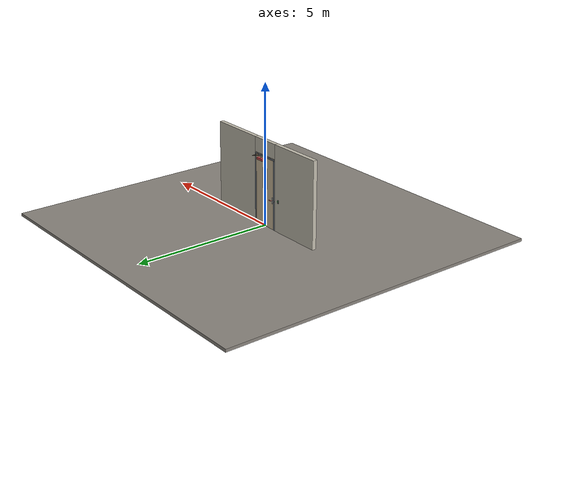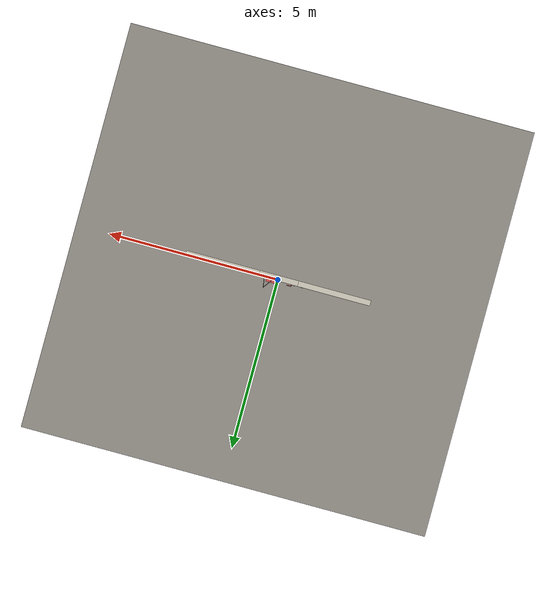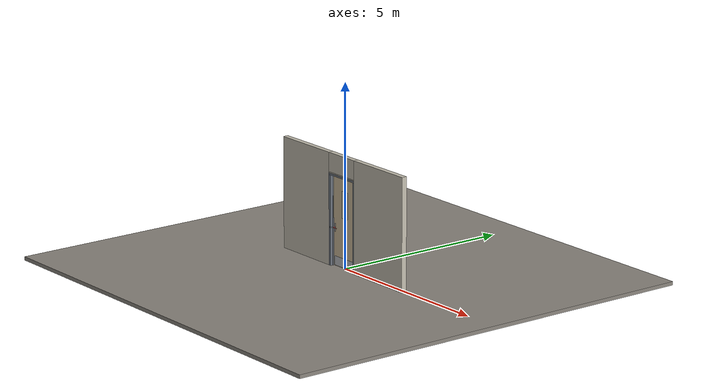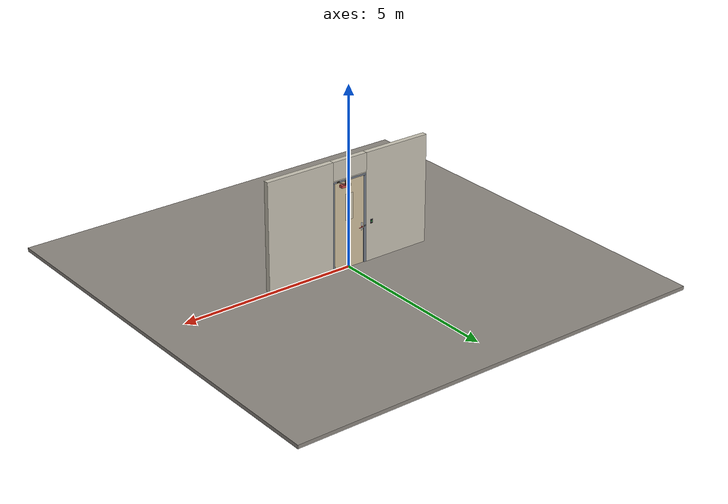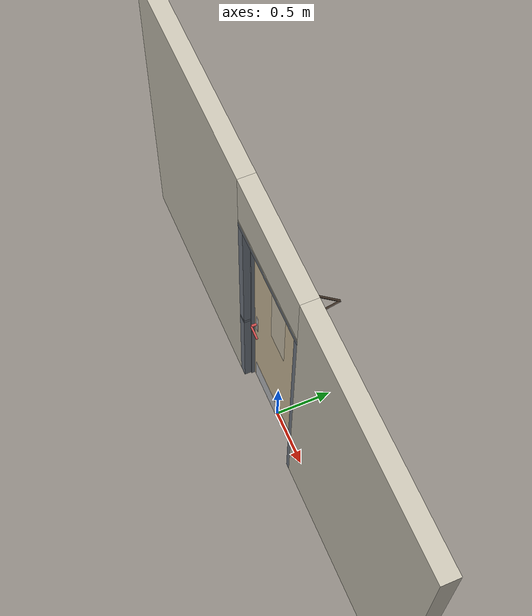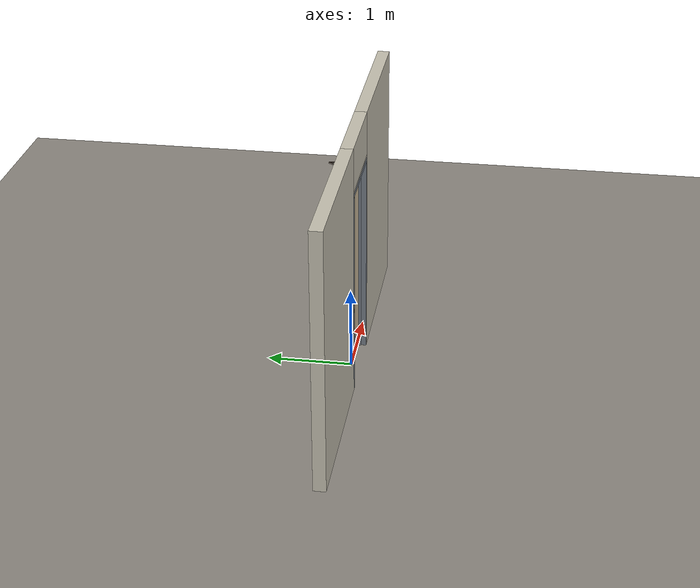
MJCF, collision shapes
<?xml version="1.0" ?>
<mujoco model="db0872_swing_single_full">
  <compiler angle="radian" meshdir="../../hardware" texturedir="../../textures" autolimits="true" inertiafromgeom="false"/>
  <option timestep="0.002" integrator="implicitfast" cone="elliptic" impratio="10" noslip_iterations="3">
    <flag multiccd="enable"/>
  </option>
  <size memory="16M"/>
  <default>
    <geom condim="4" solref="0.005 1" solimp="0.95 0.99 0.001"/>
    <joint solreflimit="0.005 1" solimplimit="0.95 0.99 0.001"/>
    <tendon solreflimit="0.005 1"/>
    <equality solref="0.002 1"/>
  </default>
  <visual>
    <headlight ambient="0.4 0.4 0.4" diffuse="0.7 0.7 0.7" specular="0.2 0.2 0.2"/>
    <quality shadowsize="4096"/>
    <map znear="0.01" zfar="60"/>
  </visual>
  <asset>
    <mesh name="closer_body_fdc4667657" file="closer_body_fdc4667657.obj"/>
    <mesh name="hinge_e22b26c0c1" file="hinge_e22b26c0c1.obj"/>
    <mesh name="hinge_jamb_e1d088f8dc" file="hinge_jamb_e1d088f8dc.obj"/>
    <mesh name="lever_f913fc5b7b" file="lever_f913fc5b7b.obj"/>
    <material name="mat_floor" rgba="0.55 0.53 0.5 1" specular="0.2" shininess="0.15" reflectance="0"/>
    <material name="mat_wall" rgba="0.78 0.76 0.7 1" specular="0.2" shininess="0.1" reflectance="0"/>
    <material name="mat_leaf" rgba="0.82 0.75 0.62 1" specular="0.2" shininess="0.32" reflectance="0"/>
    <material name="mat_glass" rgba="0.85 0.92 0.95 0.25" specular="0.2" shininess="0.95" reflectance="0.1"/>
    <material name="mat_hinge" rgba="0.65 0.66 0.68 1" specular="0.74" shininess="0.5" reflectance="0.36"/>
    <material name="mat_op_stainless" rgba="0.75 0.76 0.77 1" specular="0.8" shininess="0.65" reflectance="0.4"/>
    <material name="mat_trim" rgba="0.85 0.66 0.3 1" specular="0.8" shininess="0.75" reflectance="0.4"/>
    <material name="mat_bolt" rgba="0.75 0.76 0.77 1" specular="0.8" shininess="0.65" reflectance="0.4"/>
    <material name="mat_frame" rgba="0.45 0.48 0.52 1" specular="0.32" shininess="0.6" reflectance="0.08"/>
    <material name="mat_closer" rgba="0.22 0.17 0.13 1" specular="0.8" shininess="0.6" reflectance="0.4"/>
    <material name="mat_kick" rgba="0.75 0.76 0.77 1" specular="0.8" shininess="0.65" reflectance="0.4"/>
    <material name="mat_wallreader" rgba="0.05 0.05 0.05 1" specular="0.38" shininess="0.3" reflectance="0.12"/>
    <material name="mat_rex" rgba="0.1 0.6 0.2 1" specular="0.2" shininess="0.6" reflectance="0"/>
    <texture name="skybox" type="skybox" builtin="gradient" rgb1="0.6 0.7 0.85" rgb2="0.9 0.92 0.95" width="256" height="256"/>
  </asset>
  <worldbody>
    <light name="sun" pos="1.5 -2.5 4" dir="-0.3 0.5 -0.8" directional="true" diffuse="0.8 0.8 0.8" specular="0.3 0.3 0.3" castshadow="true"/>
    <light name="fill" pos="-1.5 2.5 3" dir="0.3 -0.5 -0.7" directional="true" diffuse="0.35 0.35 0.4" castshadow="false"/>
    <camera name="robot_view" pos="0 -2.966312 2.043887" xyaxes="1 0 0 0 0.26963 0.962964" fovy="52"/>
    <camera name="far_view" pos="0 2.879313 2.043887" xyaxes="-1 0 0 0 -0.26963 0.962964" fovy="52"/>
    <camera name="iso" pos="-2.221337 -2.498663 2.511538" xyaxes="0.741536 -0.670913 0 0.242917 0.268487 0.932151" fovy="46"/>
    <camera name="detail_handle" pos="-0.1175 -0.877 1.32" xyaxes="0.97561 0.219512 0 -0.070934 0.315262 0.94635" fovy="38"/>
    <geom name="floor" type="box" size="6 6 0.05" pos="0 0 -0.05" material="mat_floor" group="0" contype="1" conaffinity="1" friction="0.8 0.005 0.0001" density="2400"/>
    <geom name="wall_left" type="box" size="0.97975 0.0725 1.5255" pos="-1.52025 -0.0435 1.5255" material="mat_wall" group="0" contype="1" conaffinity="1" friction="0.6 0.005 0.0001" density="800"/>
    <geom name="wall_right" type="box" size="0.99475 0.0725 1.5255" pos="1.50525 -0.0435 1.5255" material="mat_wall" group="0" contype="1" conaffinity="1" friction="0.6 0.005 0.0001" density="800"/>
    <geom name="wall_header" type="box" size="0.5255 0.0725 0.26" pos="-0.015 -0.0435 2.791" material="mat_wall" group="0" contype="1" conaffinity="1" friction="0.6 0.005 0.0001" density="800"/>
    <geom name="hinge_0_jamb" type="mesh" mesh="hinge_jamb_e1d088f8dc" pos="0.4575 0.029 0.259" quat="0 0 0 1" material="mat_hinge" group="1" contype="0" conaffinity="0" density="7850"/>
    <geom name="hinge_1_jamb" type="mesh" mesh="hinge_jamb_e1d088f8dc" pos="0.4575 0.029 0.928333" quat="0 0 0 1" material="mat_hinge" group="1" contype="0" conaffinity="0" density="7850"/>
    <geom name="hinge_2_jamb" type="mesh" mesh="hinge_jamb_e1d088f8dc" pos="0.4575 0.029 1.597667" quat="0 0 0 1" material="mat_hinge" group="1" contype="0" conaffinity="0" density="7850"/>
    <geom name="hinge_3_jamb" type="mesh" mesh="hinge_jamb_e1d088f8dc" pos="0.4575 0.029 2.267" quat="0 0 0 1" material="mat_hinge" group="1" contype="0" conaffinity="0" density="7850"/>
    <geom name="jamb_hinge" type="box" size="0.025 0.0725 1.2255" pos="0.4855 -0.0435 1.2255" material="mat_frame" group="0" contype="1" conaffinity="1" friction="0.6 0.005 0.0001" density="300"/>
    <geom name="strike_1040_wall_n" type="box" size="0.04 0.05475 0.015" pos="-0.5005 -0.06125 1.04" material="mat_frame" group="0" contype="1" conaffinity="1" friction="0.6 0.005 0.0001" density="300"/>
    <geom name="strike_1040_wall_p" type="box" size="0.04 0.008 0.015" pos="-0.5005 0.0145 1.04" material="mat_frame" group="0" contype="1" conaffinity="1" friction="0.6 0.005 0.0001" density="300"/>
    <geom name="strike_1040_ramp" type="box" size="0.04 0.016771 0.015" pos="-0.503777 0.019611 1.04" quat="0.973249 0 0 0.229753" material="mat_frame" group="0" contype="1" conaffinity="1" friction="0.12 0.005 0.0001" density="300"/>
    <geom name="strike_1040_back" type="box" size="0.031 0.0065 0.015" pos="-0.5095 0 1.04" material="mat_frame" group="0" contype="1" conaffinity="1" friction="0.6 0.005 0.0001" density="300"/>
    <geom name="jamb_strike_0" type="box" size="0.04 0.0725 0.5125" pos="-0.5005 -0.0435 0.5125" material="mat_frame" group="0" contype="1" conaffinity="1" friction="0.6 0.005 0.0001" density="300"/>
    <geom name="jamb_strike_1" type="box" size="0.04 0.0725 0.698" pos="-0.5005 -0.0435 1.753" material="mat_frame" group="0" contype="1" conaffinity="1" friction="0.6 0.005 0.0001" density="300"/>
    <geom name="jamb_head" type="box" size="0.5255 0.0725 0.025" pos="-0.015 -0.0435 2.476" material="mat_frame" group="0" contype="1" conaffinity="1" friction="0.6 0.005 0.0001" density="300"/>
    <geom name="head_stud" type="box" size="0.5255 0.0725 0.015" pos="-0.015 -0.0435 2.516" material="mat_wall" group="0" contype="1" conaffinity="1" friction="0.6 0.005 0.0001" density="500"/>
    <geom name="stop_hinge" type="box" size="0.0055 0.016 1.2255" pos="0.455 -0.0385 1.2255" material="mat_frame" group="0" contype="1" conaffinity="1" friction="0.6 0.005 0.0001" density="300"/>
    <geom name="stop_strike" type="box" size="0.0055 0.016 1.2255" pos="-0.455 -0.0385 1.2255" material="mat_frame" group="0" contype="1" conaffinity="1" friction="0.6 0.005 0.0001" density="300"/>
    <geom name="stop_head" type="box" size="0.4605 0.016 0.0055" pos="0 -0.0385 2.4455" material="mat_frame" group="0" contype="1" conaffinity="1" friction="0.6 0.005 0.0001" density="300"/>
    <geom name="closer_bracket" type="box" size="0.03 0.012 0.014" pos="0.3605 0.041 2.481" material="mat_closer" group="1" contype="0" conaffinity="0" density="2700"/>
    <geom name="rex_plate" type="box" size="0.04 0.003 0.06" pos="-0.7105 0.032 1.1" material="mat_wallreader" group="1" contype="0" conaffinity="0" density="1000"/>
    <site name="approach_point" pos="0 -1.5 0" quat="1 0 0 0" size="0.05" rgba="0.2 0.9 0.2 0.5" group="4"/>
    <site name="goal_point" pos="0 1.5 0" quat="1 0 0 0" size="0.05" rgba="0.2 0.9 0.2 0.5" group="4"/>
    <site name="door_plane_center" pos="0 0 1.2255" quat="1 0 0 0" size="0.02" rgba="0.2 0.9 0.2 0.5" group="4"/>
    <body name="rex_button" pos="-0.7105 0.035 1.1">
      <inertial pos="0 0.004 0" mass="0.010053" quat="0 0 0.707107 -0.707107" diaginertia="0.000001059 0.000001059 0.000002011"/>
      <joint name="rex_button_slide" type="slide" axis="0 -1 0" limited="true" range="0 0.004" damping="1" stiffness="1500" springref="-0.004" armature="0.1"/>
      <geom name="rex_button_geom" type="cylinder" size="0.02 0.004" pos="0 0.004 0" quat="0.707107 -0.707107 0 0" material="mat_rex" group="0" contype="1" conaffinity="1" friction="0.6 0.005 0.0001" density="1000"/>
    </body>
    <body name="leaf" pos="0.4605 0 0">
      <inertial pos="-0.423799 0.013483 1.410154" mass="66.858889" quat="0.511788 -0.513072 -0.497517 -0.476767" diaginertia="4.151586833 42.922658913 46.967857494"/>
      <joint name="leaf_hinge" type="hinge" axis="0 0 -1" pos="-0.003 0.029 0" limited="true" range="0 1.570796" damping="12.307281" frictionloss="0.793445" stiffness="12.197635" springref="-2.749713" armature="0.02"/>
      <geom name="leaf_slab" type="box" size="0.457 0.022 1.219" pos="-0.46 0 1.228" material="mat_leaf" group="0" contype="1" conaffinity="1" friction="0.4 0.005 0.0001" density="1"/>
      <geom name="leaf_glass_0" type="box" size="0.125 0.0228 0.3657" pos="-0.46 0 1.7156" material="mat_glass" group="1" contype="0" conaffinity="0" density="1"/>
      <geom name="hinge_0" type="mesh" mesh="hinge_e22b26c0c1" pos="-0.003 0.029 0.259" quat="0 0 0 1" material="mat_hinge" group="1" contype="0" conaffinity="0" density="7850"/>
      <geom name="hinge_1" type="mesh" mesh="hinge_e22b26c0c1" pos="-0.003 0.029 0.928333" quat="0 0 0 1" material="mat_hinge" group="1" contype="0" conaffinity="0" density="7850"/>
      <geom name="hinge_2" type="mesh" mesh="hinge_e22b26c0c1" pos="-0.003 0.029 1.597667" quat="0 0 0 1" material="mat_hinge" group="1" contype="0" conaffinity="0" density="7850"/>
      <geom name="hinge_3" type="mesh" mesh="hinge_e22b26c0c1" pos="-0.003 0.029 2.267" quat="0 0 0 1" material="mat_hinge" group="1" contype="0" conaffinity="0" density="7850"/>
      <geom name="leaf_handle_escutcheon_n" type="box" size="0.02 0.0015 0.11" pos="-0.862 -0.0235 1.04" material="mat_op_stainless" group="1" contype="0" conaffinity="0" density="3000"/>
      <geom name="leaf_handle_escutcheon_p" type="box" size="0.02 0.0015 0.11" pos="-0.862 0.0235 1.04" material="mat_op_stainless" group="1" contype="0" conaffinity="0" density="3000"/>
      <geom name="leaf_latch_bolt_faceplate" type="box" size="0.0006 0.011 0.025" pos="-0.9164 0 1.04" material="mat_bolt" group="1" contype="0" conaffinity="0" density="8500"/>
      <geom name="closer_body" type="mesh" mesh="closer_body_fdc4667657" pos="-0.3 0.022 2.358" quat="0 0 0.707107 0.707107" material="mat_closer" group="1" contype="0" conaffinity="0" density="2000"/>
      <geom name="closer_body_col" type="box" size="0.145 0.05 0.035" pos="-0.3 0.072 2.358" material="mat_closer" group="3" contype="1" conaffinity="1" rgba="0.8 0.3 0.3 0.25" friction="0.6 0.005 0.0001" density="2000"/>
      <geom name="closer_pinion_shaft" type="cylinder" size="0.008 0.0615" pos="-0.3 0.072 2.4195" material="mat_closer" group="1" contype="0" conaffinity="0" density="2700"/>
      <geom name="kick_plate_n" type="box" size="0.427 0.0008 0.125" pos="-0.46 -0.0228 0.144" material="mat_kick" group="2" contype="0" conaffinity="0" density="7900"/>
      <site name="leaf_edge_mid" pos="-0.917 0 1.219" quat="1 0 0 0" size="0.02" rgba="0.2 0.9 0.2 0.5" group="4"/>
      <body name="leaf_handle" pos="-0.862 0 1.04">
        <inertial pos="0.038995 0 0" mass="0.772658" quat="0 0.707107 0.707107 0" diaginertia="0.001545312 0.003473151 0.004979007"/>
        <joint name="leaf_handle_hinge" type="hinge" axis="0 1 0" limited="true" range="0 0.65" damping="0.225568" frictionloss="0.051863" stiffness="1" springref="-0.503022" armature="0.01"/>
        <geom name="leaf_handle_spindle" type="cylinder" size="0.006 0.034" pos="0 0 0" quat="0.707107 -0.707107 0 0" material="mat_op_stainless" group="1" contype="0" conaffinity="0" density="7850"/>
        <geom name="leaf_handle_lever_n" type="mesh" mesh="lever_f913fc5b7b" pos="0 -0.022 0" quat="0 0 -0.707107 0.707107" material="mat_op_stainless" group="1" contype="0" conaffinity="0" density="3000"/>
        <geom name="leaf_handle_lever_col_n" type="capsule" size="0.0095 0.0555" pos="0.065 -0.077 0" quat="0.707107 0 0.707107 0" material="mat_op_stainless" group="3" contype="1" conaffinity="1" rgba="0.8 0.3 0.3 0.25" friction="0.7 0.01 0.0001" density="3000"/>
        <geom name="leaf_handle_hub_col_n" type="cylinder" size="0.012 0.022" pos="0 -0.052 0" quat="0.707107 -0.707107 0 0" material="mat_op_stainless" group="3" contype="1" conaffinity="1" rgba="0.8 0.3 0.3 0.25" friction="0.6 0.005 0.0001" density="3000"/>
        <geom name="leaf_handle_lever_p" type="mesh" mesh="lever_f913fc5b7b" pos="0 0.022 0" quat="0 0 0.707107 0.707107" material="mat_op_stainless" group="1" contype="0" conaffinity="0" density="3000"/>
        <geom name="leaf_handle_lever_col_p" type="capsule" size="0.0095 0.0555" pos="0.065 0.077 0" quat="0.707107 0 0.707107 0" material="mat_op_stainless" group="3" contype="1" conaffinity="1" rgba="0.8 0.3 0.3 0.25" friction="0.7 0.01 0.0001" density="3000"/>
        <geom name="leaf_handle_hub_col_p" type="cylinder" size="0.012 0.022" pos="0 0.052 0" quat="0.707107 -0.707107 0 0" material="mat_op_stainless" group="3" contype="1" conaffinity="1" rgba="0.8 0.3 0.3 0.25" friction="0.6 0.005 0.0001" density="3000"/>
        <site name="leaf_handle_grip_n" pos="0.104 -0.077 0" quat="1 0 0 0" size="0.012" rgba="0.2 0.9 0.2 0.5" group="4"/>
        <site name="leaf_handle_grip_p" pos="0.104 0.077 0" quat="1 0 0 0" size="0.012" rgba="0.2 0.9 0.2 0.5" group="4"/>
      </body>
      <body name="leaf_latch_bolt" pos="-0.917 0 1.04">
        <inertial pos="0.008 0 0" mass="0.027149" quat="0 0 -0.707107 0.707107" diaginertia="0.000000328 0.000003943 0.000003943"/>
        <joint name="leaf_latch_bolt_slide" type="slide" axis="1 0 0" limited="true" range="0 0.014" damping="2" frictionloss="0.3" stiffness="400" springref="-0.01" armature="0.1"/>
        <geom name="leaf_latch_bolt_capsule" type="capsule" size="0.005 0.017" pos="0.008 0 0" quat="0.707107 0 -0.707107 0" material="mat_bolt" group="0" contype="1" conaffinity="1" friction="0.2 0.005 0.0001" density="8500"/>
      </body>
      <body name="closer_arm_main" pos="-0.3 0.072 2.481" quat="0.890947 0 0 0.454107">
        <inertial pos="0.14 0 0" mass="0.12096" quat="1 0 0 0" diaginertia="0.000003588 0.00079128 0.000792852"/>
        <joint name="closer_pinion" type="hinge" axis="0 0 1" limited="false" damping="0.01" armature="0.002"/>
        <geom name="closer_arm_main_geom" type="box" size="0.14 0.008 0.005" pos="0.14 0 0" material="mat_closer" group="1" contype="0" conaffinity="0" density="2700"/>
        <body name="closer_arm_fore" pos="0.28 0 0" quat="0.373215 0 0 -0.927745">
          <inertial pos="0.128088 0 0" mass="0.076531" quat="1 0 0 0" diaginertia="0.000001771 0.000437665 0.000438201"/>
          <joint name="closer_elbow" type="hinge" axis="0 0 1" limited="false" damping="0.01" armature="0.002"/>
          <geom name="closer_arm_fore_geom" type="box" size="0.1125 0.007 0.004" pos="0.1125 0 0" material="mat_closer" group="1" contype="0" conaffinity="0" density="2700"/>
          <geom name="closer_fore_neck" type="box" size="0.0175 0.003 0.003" pos="0.2425 0 0" material="mat_closer" group="1" contype="0" conaffinity="0" density="2700"/>
          <geom name="closer_fore_pivot" type="cylinder" size="0.005 0.012" pos="0.26 0 0" material="mat_closer" group="1" contype="0" conaffinity="0" density="2700"/>
        </body>
      </body>
    </body>
  </worldbody>
  <tendon>
    <fixed name="leaf_latch_bolt_coupling" limited="true" range="0 10">
      <joint joint="leaf_latch_bolt_slide" coef="1"/>
      <joint joint="leaf_handle_hinge" coef="-0.022951"/>
    </fixed>
  </tendon>
  <equality>
    <connect name="closer_arm_connect" body1="closer_arm_fore" body2="world" anchor="0.26 0 0" active="true"/>
  </equality>
  <contact>
    <exclude body1="closer_arm_main" body2="leaf"/>
    <exclude body1="closer_arm_fore" body2="leaf"/>
    <exclude body1="closer_arm_main" body2="closer_arm_fore"/>
  </contact>
  <sensor>
    <jointpos name="leaf_hinge_pos" joint="leaf_hinge"/>
    <jointvel name="leaf_hinge_vel" joint="leaf_hinge"/>
    <jointpos name="leaf_handle_hinge_pos" joint="leaf_handle_hinge"/>
    <jointvel name="leaf_handle_hinge_vel" joint="leaf_handle_hinge"/>
    <jointpos name="leaf_latch_bolt_slide_pos" joint="leaf_latch_bolt_slide"/>
    <jointvel name="leaf_latch_bolt_slide_vel" joint="leaf_latch_bolt_slide"/>
    <jointpos name="rex_button_slide_pos" joint="rex_button_slide"/>
    <jointvel name="rex_button_slide_vel" joint="rex_button_slide"/>
  </sensor>
</mujoco>
